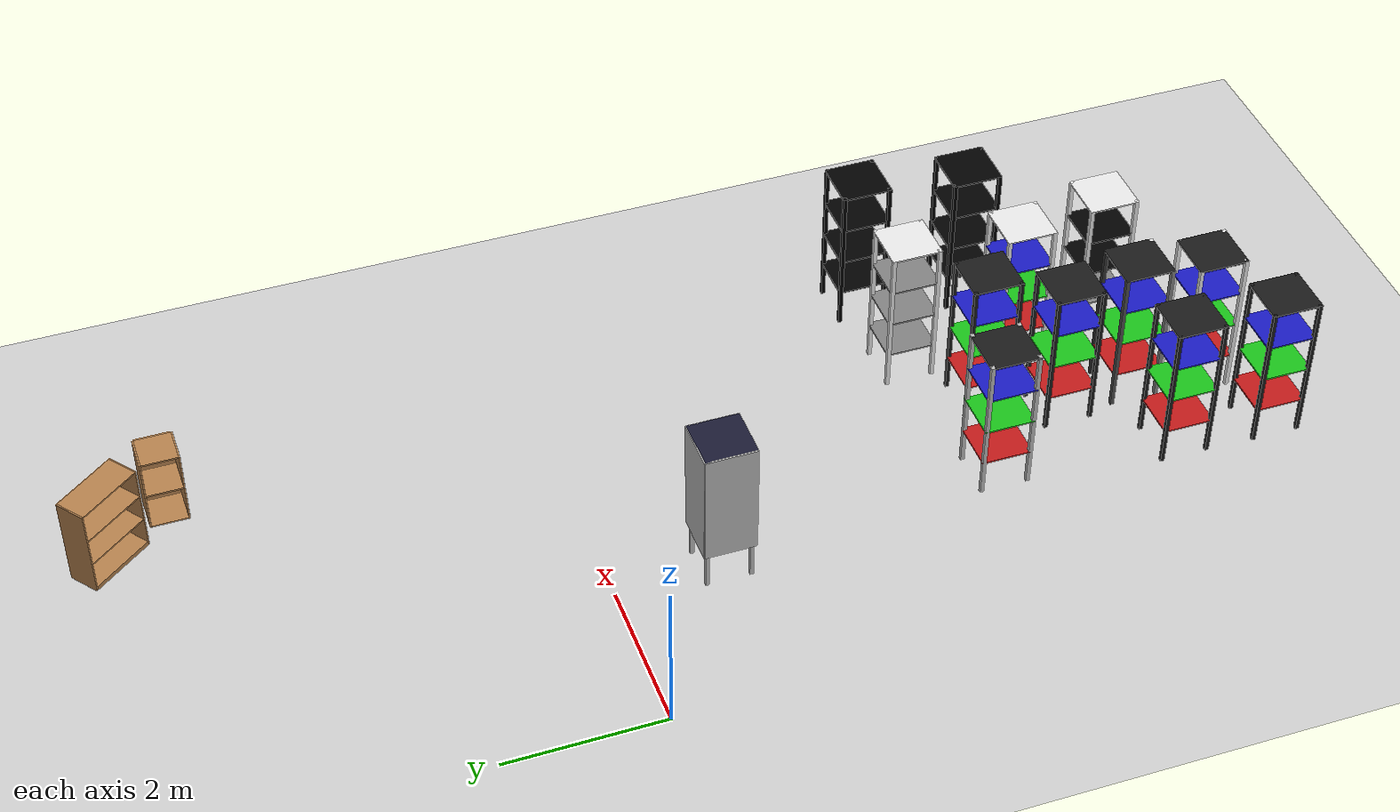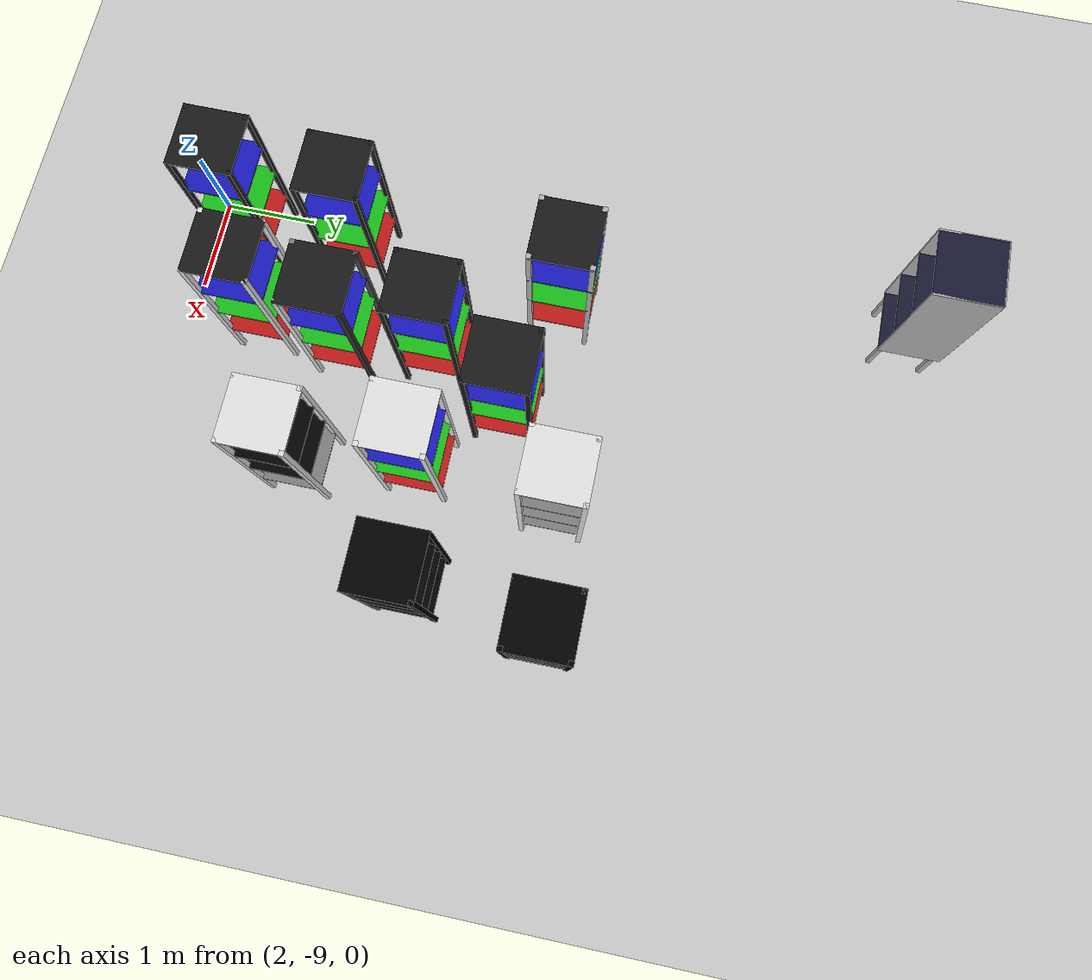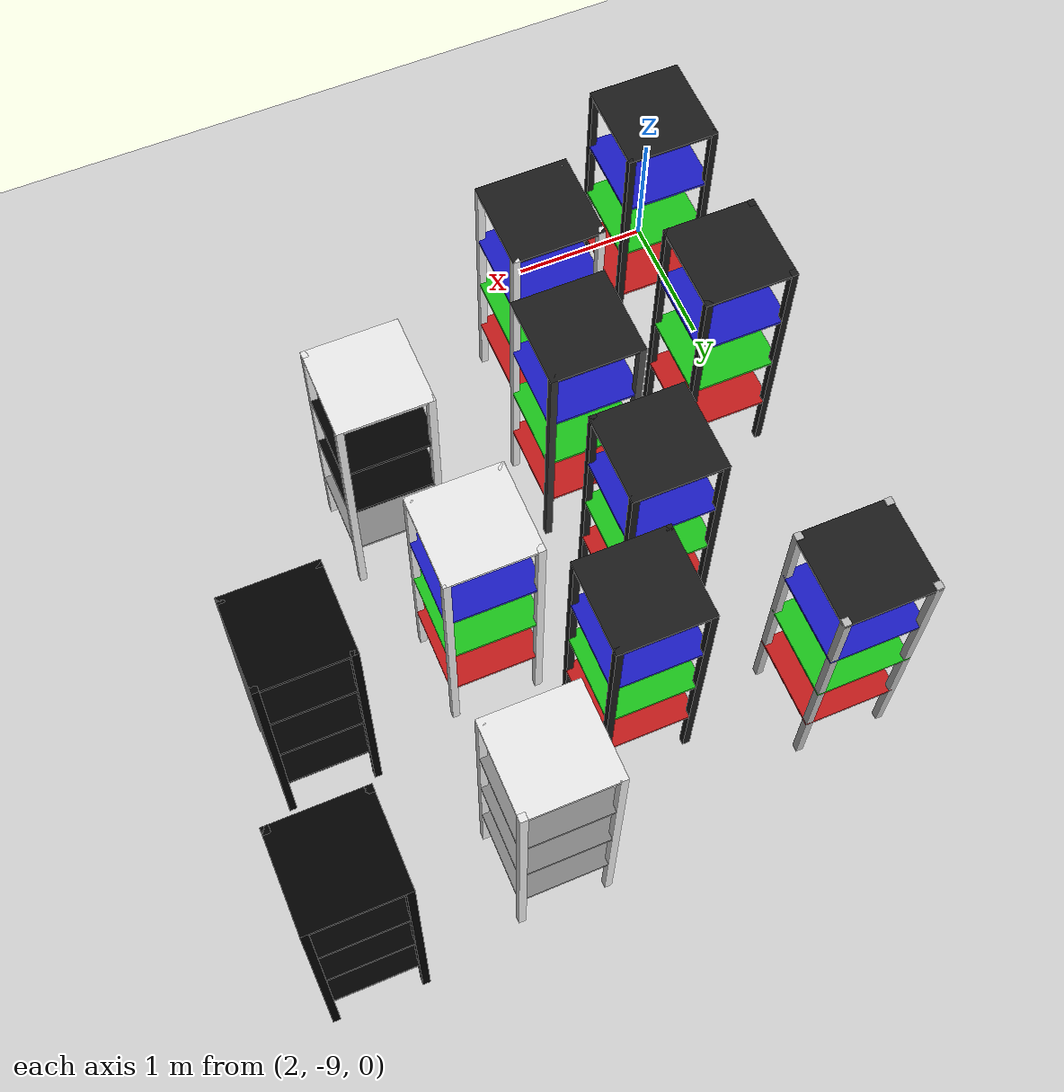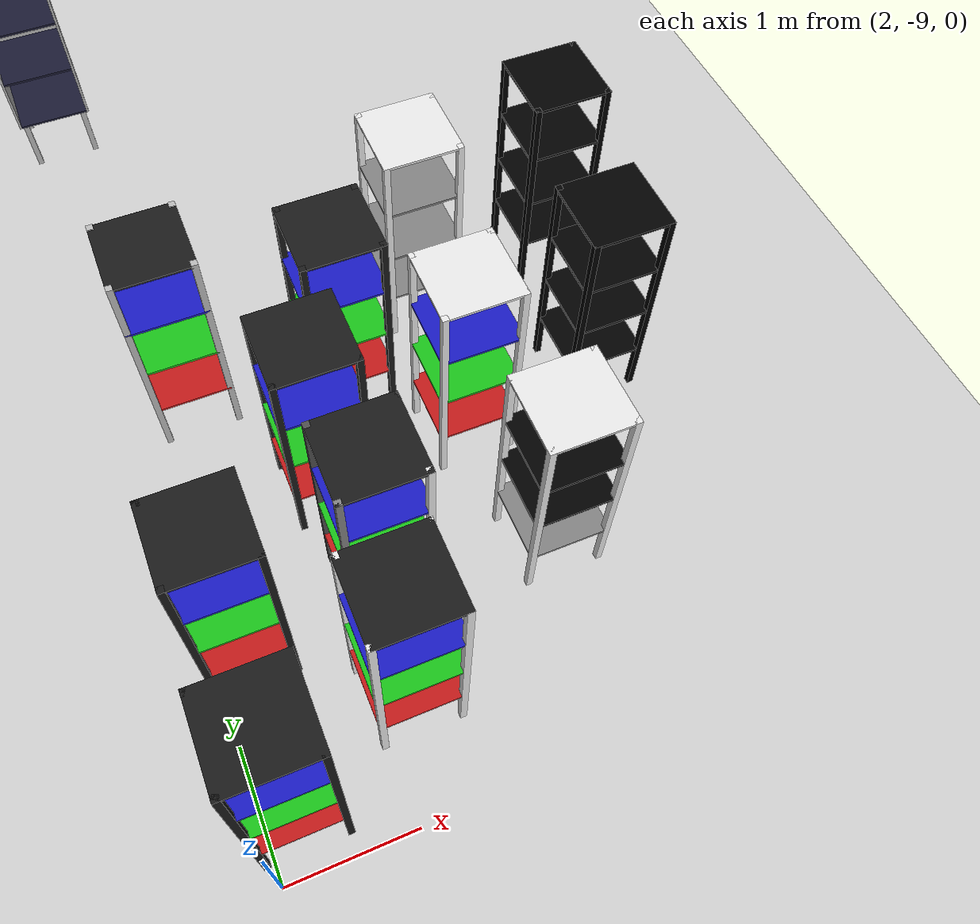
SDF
<sdf version="1.6">
 <world name="default">
  <model name="ground_plane">
   <static>1</static>
   <link name="link">
    <collision name="collision">
     <geometry><plane><normal>0 0 1</normal><size>50 50</size></plane></geometry>
     <surface><friction><ode><mu>100</mu><mu2>50</mu2></ode></friction></surface>
    </collision>
    <visual name="visual">
     <cast_shadows>0</cast_shadows>
     <geometry><plane><normal>0 0 1</normal><size>100 100</size></plane></geometry>
     <material>
      <script><uri>file://media/materials/scripts/gazebo.material</uri><name>Gazebo/Grey</name></script>
     </material>
    </visual>
    <velocity_decay><linear>0</linear><angular>0</angular></velocity_decay>
   </link>
  </model>
  <model name="bookshelf_2">
   <static>1</static>
   <link name="link">
    <inertial><mass>1</mass></inertial>
    <collision name="back">
     <pose>0 0.005 0.6 0 -0 0</pose>
     <geometry><box><size>0.9 0.01 1.2</size></box></geometry>
    </collision>
    <visual name="visual1">
     <pose>0 0.005 0.6 0 -0 0</pose>
     <geometry><box><size>0.9 0.01 1.2</size></box></geometry>
     <material>
      <script><uri>file://media/materials/scripts/gazebo.material</uri><name>Gazebo/Wood</name></script>
     </material>
    </visual>
    <collision name="left_side">
     <pose>0.45 -0.195 0.6 0 -0 0</pose>
     <geometry><box><size>0.02 0.4 1.2</size></box></geometry>
    </collision>
    <visual name="visual2">
     <pose>0.45 -0.195 0.6 0 -0 0</pose>
     <geometry><box><size>0.02 0.4 1.2</size></box></geometry>
     <material>
      <script><uri>file://media/materials/scripts/gazebo.material</uri><name>Gazebo/Wood</name></script>
     </material>
    </visual>
    <collision name="right_side">
     <pose>-0.45 -0.195 0.6 0 -0 0</pose>
     <geometry><box><size>0.02 0.4 1.2</size></box></geometry>
    </collision>
    <visual name="visual3">
     <pose>-0.45 -0.195 0.6 0 -0 0</pose>
     <geometry><box><size>0.02 0.4 1.2</size></box></geometry>
     <material>
      <script><uri>file://media/materials/scripts/gazebo.material</uri><name>Gazebo/Wood</name></script>
     </material>
    </visual>
    <collision name="bottom">
     <pose>0 -0.195 0.03 0 -0 0</pose>
     <geometry><box><size>0.88 0.4 0.06</size></box></geometry>
    </collision>
    <visual name="visual4">
     <pose>0 -0.195 0.03 0 -0 0</pose>
     <geometry><box><size>0.88 0.4 0.06</size></box></geometry>
     <material>
      <script><uri>file://media/materials/scripts/gazebo.material</uri><name>Gazebo/Wood</name></script>
     </material>
    </visual>
    <collision name="top">
     <pose>0 -0.195 1.19 0 -0 0</pose>
     <geometry><box><size>0.88 0.4 0.02</size></box></geometry>
    </collision>
    <visual name="visual5">
     <pose>0 -0.195 1.19 0 -0 0</pose>
     <geometry><box><size>0.88 0.4 0.02</size></box></geometry>
     <material>
      <script><uri>file://media/materials/scripts/gazebo.material</uri><name>Gazebo/Wood</name></script>
     </material>
    </visual>
    <collision name="low_shelf">
     <pose>0 -0.195 0.43 0 -0 0</pose>
     <geometry><box><size>0.88 0.4 0.02</size></box></geometry>
    </collision>
    <visual name="visual6">
     <pose>0 -0.195 0.43 0 -0 0</pose>
     <geometry><box><size>0.88 0.4 0.02</size></box></geometry>
     <material>
      <script><uri>file://media/materials/scripts/gazebo.material</uri><name>Gazebo/Wood</name></script>
     </material>
    </visual>
    <collision name="high_shelf">
     <pose>0 -0.195 0.8 0 -0 0</pose>
     <geometry><box><size>0.88 0.4 0.02</size></box></geometry>
    </collision>
    <visual name="visual7">
     <pose>0 -0.195 0.8 0 -0 0</pose>
     <geometry><box><size>0.88 0.4 0.02</size></box></geometry>
     <material>
      <script><uri>file://media/materials/scripts/gazebo.material</uri><name>Gazebo/Wood</name></script>
     </material>
    </visual>
    <velocity_decay><linear>0</linear><angular>0</angular></velocity_decay>
   </link>
   <pose>4.65383 5.55808 0 0 0 -0.917052</pose>
  </model>
  <model name="cabinet_1">
   <static>1</static>
   <link name="cabinet_bottom_plate">
    <inertial>
     <pose>0 0 -1 0 -0 0</pose>
     <inertia><ixx>2.05</ixx><ixy>0</ixy><ixz>0</ixz><iyy>2.05</iyy><iyz>0</iyz><izz>2.05</izz></inertia>
     <mass>25</mass>
    </inertial>
    <collision name="cabinet_bottom_plate_geom">
     <pose>0 0 0.01 0 -0 0</pose>
     <geometry><box><size>0.45 0.45 0.02</size></box></geometry>
    </collision>
    <visual name="cabinet_bottom_plate_geom_visual">
     <pose>0 0 0.01 0 -0 0</pose>
     <geometry><box><size>0.45 0.45 0.02</size></box></geometry>
     <material>
      <script><uri>file://media/materials/scripts/gazebo.material</uri><name>Gazebo/Wood</name></script>
     </material>
    </visual>
    <collision name="cabinet_bottom_plate_geom_cabinet_back_plate">
     <pose>0.235 0 0.51 0 -0 0</pose>
     <geometry><box><size>0.02 0.45 1.02</size></box></geometry>
    </collision>
    <visual name="cabinet_bottom_plate_geom_cabinet_back_plate_visual">
     <pose>0.235 0 0.51 0 -0 0</pose>
     <geometry><box><size>0.02 0.45 1.02</size></box></geometry>
     <material>
      <script><uri>file://media/materials/scripts/gazebo.material</uri><name>Gazebo/Wood</name></script>
     </material>
    </visual>
    <collision name="cabinet_bottom_plate_geom_cabinet_left_plate">
     <pose>0 0.235 0.51 0 -0 0</pose>
     <geometry><box><size>0.45 0.02 1.02</size></box></geometry>
    </collision>
    <visual name="cabinet_bottom_plate_geom_cabinet_left_plate_visual">
     <pose>0 0.235 0.51 0 -0 0</pose>
     <geometry><box><size>0.45 0.02 1.02</size></box></geometry>
     <material>
      <script><uri>file://media/materials/scripts/gazebo.material</uri><name>Gazebo/Wood</name></script>
     </material>
    </visual>
    <collision name="cabinet_bottom_plate_geom_cabinet_middle_plate">
     <pose>0 0 0.51 0 -0 0</pose>
     <geometry><box><size>0.45 0.45 0.02</size></box></geometry>
    </collision>
    <visual name="cabinet_bottom_plate_geom_cabinet_middle_plate_visual">
     <pose>0 0 0.51 0 -0 0</pose>
     <geometry><box><size>0.45 0.45 0.02</size></box></geometry>
     <material>
      <script><uri>file://media/materials/scripts/gazebo.material</uri><name>Gazebo/Wood</name></script>
     </material>
    </visual>
    <collision name="cabinet_bottom_plate_geom_cabinet_right_plate">
     <pose>0 -0.235 0.51 0 -0 0</pose>
     <geometry><box><size>0.45 0.02 1.02</size></box></geometry>
    </collision>
    <visual name="cabinet_bottom_plate_geom_cabinet_right_plate_visual">
     <pose>0 -0.235 0.51 0 -0 0</pose>
     <geometry><box><size>0.45 0.02 1.02</size></box></geometry>
     <material>
      <script><uri>file://media/materials/scripts/gazebo.material</uri><name>Gazebo/Wood</name></script>
     </material>
    </visual>
    <collision name="cabinet_bottom_plate_geom_cabinet_top_plate">
     <pose>0 0 1.01 0 -0 0</pose>
     <geometry><box><size>0.45 0.45 0.02</size></box></geometry>
    </collision>
    <visual name="cabinet_bottom_plate_geom_cabinet_top_plate_visual">
     <pose>0 0 1.01 0 -0 0</pose>
     <geometry><box><size>0.45 0.45 0.02</size></box></geometry>
     <material>
      <script><uri>file://media/materials/scripts/gazebo.material</uri><name>Gazebo/Wood</name></script>
     </material>
    </visual>
    <velocity_decay><linear>0</linear><angular>0</angular></velocity_decay>
   </link>
   <pose>5.10985 4.64944 0 0 -0 0</pose>
  </model>
  <model name="warehouse_shelf_2">
   <static>1</static>
   <pose>2.10777 -1.33908 0 0 -0 0</pose>
   <link name="main_block">
    <pose>0 0 1.255 0 -0 0</pose>
    <collision name="collision"><geometry><box><size>0.65 0.65 1.51</size></box></geometry></collision>
   </link>
   <link name="leg_1">
    <pose>0.275 0.275 0.25 0 -0 0</pose>
    <collision name="collision"><geometry><box><size>0.05 0.05 0.5</size></box></geometry></collision>
    <visual name="visual"><geometry><box><size>0.05 0.05 0.5</size></box></geometry></visual>
   </link>
   <link name="leg_2">
    <pose>-0.275 0.275 0.25 0 -0 0</pose>
    <collision name="collision"><geometry><box><size>0.05 0.05 0.5</size></box></geometry></collision>
    <visual name="visual"><geometry><box><size>0.05 0.05 0.5</size></box></geometry></visual>
   </link>
   <link name="leg_3">
    <pose>-0.275 -0.275 0.25 0 -0 0</pose>
    <collision name="collision"><geometry><box><size>0.05 0.05 0.5</size></box></geometry></collision>
    <visual name="visual"><geometry><box><size>0.05 0.05 0.5</size></box></geometry></visual>
   </link>
   <link name="leg_4">
    <pose>0.275 -0.275 0.25 0 -0 0</pose>
    <collision name="collision"><geometry><box><size>0.05 0.05 0.5</size></box></geometry></collision>
    <visual name="visual"><geometry><box><size>0.05 0.05 0.5</size></box></geometry></visual>
   </link>
   <link name="shelf_0">
    <pose>0 0 0.5 0 -0 0</pose>
    <visual name="visual">
     <geometry><box><size>0.648 0.648 0.02</size></box></geometry>
     <material>
      <ambient>0.1 0.1 0.1 1</ambient>
      <diffuse>0.1 0.1 0.2 1</diffuse>
      <specular>0 0 0 0</specular>
      <emissive>0 0 0 1</emissive>
     </material>
    </visual>
   </link>
   <link name="shelf_1">
    <pose>0 0 1 0 -0 0</pose>
    <visual name="visual">
     <geometry><box><size>0.648 0.648 0.02</size></box></geometry>
     <material>
      <ambient>0.9 0.1 0.1 1</ambient>
      <diffuse>0.1 0.1 0.2 1</diffuse>
      <specular>0 0 0 0</specular>
      <emissive>0 0 0 1</emissive>
     </material>
    </visual>
   </link>
   <link name="shelf_2">
    <pose>0 0 1.5 0 -0 0</pose>
    <visual name="visual">
     <geometry><box><size>0.648 0.648 0.02</size></box></geometry>
     <material>
      <ambient>0.9 0.9 0.1 1</ambient>
      <diffuse>0.1 0.1 0.2 1</diffuse>
      <specular>0 0 0 0</specular>
      <emissive>0 0 0 1</emissive>
     </material>
    </visual>
   </link>
   <link name="shelf_top">
    <pose>0 0 2 0 -0 0</pose>
    <visual name="visual">
     <geometry><box><size>0.648 0.648 0.02</size></box></geometry>
     <material>
      <ambient>0.1 0.1 0.1 1</ambient>
      <diffuse>0.1 0.1 0.2 1</diffuse>
      <specular>0 0 0 0</specular>
      <emissive>0 0 0 1</emissive>
     </material>
    </visual>
   </link>
   <link name="side_left">
    <pose>0.324 0 1.25 0 -0 0</pose>
    <visual name="visual"><geometry><box><size>0.02 0.65 1.52</size></box></geometry></visual>
   </link>
   <link name="side_right">
    <pose>-0.324 0 1.25 0 -0 0</pose>
    <visual name="visual"><geometry><box><size>0.02 0.65 1.52</size></box></geometry></visual>
   </link>
   <link name="side_back">
    <pose>0 0.324 1.25 0 -0 0</pose>
    <visual name="visual"><geometry><box><size>0.65 0.02 1.52</size></box></geometry></visual>
   </link>
  </model>
  <model name="warehouse_shelf_25">
   <static>1</static>
   <pose>2.50013 -5.00606 0 0 -0 0</pose>
   <link name="main_block">
    <pose>0 0 1.25 0 -0 0</pose>
    <collision name="collision"><geometry><box><size>0.65 0.65 1.5</size></box></geometry></collision>
   </link>
   <link name="leg_1">
    <pose>0.3 0.3 1 0 -0 0</pose>
    <collision name="collision"><geometry><box><size>0.05 0.05 2</size></box></geometry></collision>
    <visual name="visual"><geometry><box><size>0.05 0.05 2</size></box></geometry></visual>
   </link>
   <link name="leg_2">
    <pose>-0.3 0.3 1 0 -0 0</pose>
    <collision name="collision"><geometry><box><size>0.05 0.05 2</size></box></geometry></collision>
    <visual name="visual"><geometry><box><size>0.05 0.05 2</size></box></geometry></visual>
   </link>
   <link name="leg_3">
    <pose>-0.3 -0.3 1 0 -0 0</pose>
    <collision name="collision"><geometry><box><size>0.05 0.05 2</size></box></geometry></collision>
    <visual name="visual"><geometry><box><size>0.05 0.05 2</size></box></geometry></visual>
   </link>
   <link name="leg_4">
    <pose>0.3 -0.3 1 0 -0 0</pose>
    <collision name="collision"><geometry><box><size>0.05 0.05 2</size></box></geometry></collision>
    <visual name="visual"><geometry><box><size>0.05 0.05 2</size></box></geometry></visual>
   </link>
   <link name="shelf_0">
    <pose>0 0 0.48 0 -0 0</pose>
    <visual name="visual">
     <geometry><box><size>0.65 0.65 0.02</size></box></geometry>
     <material><ambient>0.75 0.1 0.1 1</ambient><diffuse>0.75 0.1 0.1 1</diffuse></material>
    </visual>
   </link>
   <link name="shelf_1">
    <pose>0 0 0.98 0 -0 0</pose>
    <visual name="visual">
     <geometry><box><size>0.65 0.65 0.02</size></box></geometry>
     <material><ambient>0.1 0.75 0.1 1</ambient><diffuse>0.1 0.75 0.1 1</diffuse></material>
    </visual>
   </link>
   <link name="shelf_2">
    <pose>0 0 1.48 0 -0 0</pose>
    <visual name="visual">
     <geometry><box><size>0.65 0.65 0.02</size></box></geometry>
     <material><ambient>0.1 0.1 0.75 1</ambient><diffuse>0.1 0.1 0.75 1</diffuse></material>
    </visual>
   </link>
   <link name="shelf_top">
    <pose>0 0 1.98 0 -0 0</pose>
    <visual name="visual">
     <geometry><box><size>0.65 0.65 0.02</size></box></geometry>
     <material><ambient>0.1 0.1 0.1 1</ambient><diffuse>0.1 0.1 0.1 1</diffuse></material>
    </visual>
   </link>
  </model>
  <model name="warehouse_shelf_31">
   <static>1</static>
   <pose>2.24316 -8.52658 0 0 -0 0</pose>
   <link name="main_block">
    <pose>0 0 1.25 0 -0 0</pose>
    <collision name="collision"><geometry><box><size>0.65 0.65 1.5</size></box></geometry></collision>
   </link>
   <link name="leg_1">
    <pose>0.3 0.3 1 0 -0 0</pose>
    <collision name="collision"><geometry><box><size>0.05 0.05 2</size></box></geometry></collision>
    <visual name="visual">
     <geometry><box><size>0.05 0.05 2</size></box></geometry>
     <material><ambient>0.1 0.1 0.1 1</ambient><diffuse>0.1 0.1 0.1 1</diffuse></material>
    </visual>
   </link>
   <link name="leg_2">
    <pose>-0.3 0.3 1 0 -0 0</pose>
    <collision name="collision"><geometry><box><size>0.05 0.05 2</size></box></geometry></collision>
    <visual name="visual">
     <geometry><box><size>0.05 0.05 2</size></box></geometry>
     <material><ambient>0.1 0.1 0.1 1</ambient><diffuse>0.1 0.1 0.1 1</diffuse></material>
    </visual>
   </link>
   <link name="leg_3">
    <pose>-0.3 -0.3 1 0 -0 0</pose>
    <collision name="collision"><geometry><box><size>0.05 0.05 2</size></box></geometry></collision>
    <visual name="visual">
     <geometry><box><size>0.05 0.05 2</size></box></geometry>
     <material><ambient>0.1 0.1 0.1 1</ambient><diffuse>0.1 0.1 0.1 1</diffuse></material>
    </visual>
   </link>
   <link name="leg_4">
    <pose>0.3 -0.3 1 0 -0 0</pose>
    <collision name="collision"><geometry><box><size>0.05 0.05 2</size></box></geometry></collision>
    <visual name="visual">
     <geometry><box><size>0.05 0.05 2</size></box></geometry>
     <material><ambient>0.1 0.1 0.1 1</ambient><diffuse>0.1 0.1 0.1 1</diffuse></material>
    </visual>
   </link>
   <link name="shelf_0">
    <pose>0 0 0.49 0 -0 0</pose>
    <visual name="visual">
     <geometry><box><size>0.649 0.649 0.02</size></box></geometry>
     <material><ambient>0.75 0.1 0.1 1</ambient><diffuse>0.75 0.1 0.1 1</diffuse></material>
    </visual>
   </link>
   <link name="shelf_1">
    <pose>0 0 0.99 0 -0 0</pose>
    <visual name="visual">
     <geometry><box><size>0.649 0.649 0.02</size></box></geometry>
     <material><ambient>0.1 0.75 0.1 1</ambient><diffuse>0.1 0.75 0.1 1</diffuse></material>
    </visual>
   </link>
   <link name="shelf_2">
    <pose>0 0 1.49 0 -0 0</pose>
    <visual name="visual">
     <geometry><box><size>0.649 0.649 0.02</size></box></geometry>
     <material><ambient>0.1 0.1 0.75 1</ambient><diffuse>0.1 0.1 0.75 1</diffuse></material>
    </visual>
   </link>
   <link name="shelf_top">
    <pose>0 0 1.99 0 -0 0</pose>
    <visual name="visual">
     <geometry><box><size>0.649 0.649 0.02</size></box></geometry>
     <material><ambient>0.1 0.1 0.1 1</ambient><diffuse>0.1 0.1 0.1 1</diffuse></material>
    </visual>
   </link>
  </model>
  <model name="warehouse_shelf_33">
   <static>1</static>
   <pose>3.77853 -5.34366 0 0 -0 0</pose>
   <link name="main_block">
    <pose>0 0 1.25 0 -0 0</pose>
    <collision name="collision"><geometry><box><size>0.65 0.65 1.5</size></box></geometry></collision>
   </link>
   <link name="leg_1">
    <pose>0.3 0.3 1 0 -0 0</pose>
    <collision name="collision"><geometry><box><size>0.05 0.05 2</size></box></geometry></collision>
    <visual name="visual">
     <geometry><box><size>0.05 0.05 2</size></box></geometry>
     <material><ambient>0.1 0.1 0.1 1</ambient><diffuse>0.1 0.1 0.1 1</diffuse></material>
    </visual>
   </link>
   <link name="leg_2">
    <pose>-0.3 0.3 1 0 -0 0</pose>
    <collision name="collision"><geometry><box><size>0.05 0.05 2</size></box></geometry></collision>
    <visual name="visual">
     <geometry><box><size>0.05 0.05 2</size></box></geometry>
     <material><ambient>0.1 0.1 0.1 1</ambient><diffuse>0.1 0.1 0.1 1</diffuse></material>
    </visual>
   </link>
   <link name="leg_3">
    <pose>-0.3 -0.3 1 0 -0 0</pose>
    <collision name="collision"><geometry><box><size>0.05 0.05 2</size></box></geometry></collision>
    <visual name="visual">
     <geometry><box><size>0.05 0.05 2</size></box></geometry>
     <material><ambient>0.1 0.1 0.1 1</ambient><diffuse>0.1 0.1 0.1 1</diffuse></material>
    </visual>
   </link>
   <link name="leg_4">
    <pose>0.3 -0.3 1 0 -0 0</pose>
    <collision name="collision"><geometry><box><size>0.05 0.05 2</size></box></geometry></collision>
    <visual name="visual">
     <geometry><box><size>0.05 0.05 2</size></box></geometry>
     <material><ambient>0.1 0.1 0.1 1</ambient><diffuse>0.1 0.1 0.1 1</diffuse></material>
    </visual>
   </link>
   <link name="shelf_0">
    <pose>0 0 0.49 0 -0 0</pose>
    <visual name="visual">
     <geometry><box><size>0.649 0.649 0.02</size></box></geometry>
     <material><ambient>0.75 0.1 0.1 1</ambient><diffuse>0.75 0.1 0.1 1</diffuse></material>
    </visual>
   </link>
   <link name="shelf_1">
    <pose>0 0 0.99 0 -0 0</pose>
    <visual name="visual">
     <geometry><box><size>0.649 0.649 0.02</size></box></geometry>
     <material><ambient>0.1 0.75 0.1 1</ambient><diffuse>0.1 0.75 0.1 1</diffuse></material>
    </visual>
   </link>
   <link name="shelf_2">
    <pose>0 0 1.49 0 -0 0</pose>
    <visual name="visual">
     <geometry><box><size>0.649 0.649 0.02</size></box></geometry>
     <material><ambient>0.1 0.1 0.75 1</ambient><diffuse>0.1 0.1 0.75 1</diffuse></material>
    </visual>
   </link>
   <link name="shelf_top">
    <pose>0 0 1.99 0 -0 0</pose>
    <visual name="visual">
     <geometry><box><size>0.649 0.649 0.02</size></box></geometry>
     <material><ambient>0.1 0.1 0.1 1</ambient><diffuse>0.1 0.1 0.1 1</diffuse></material>
    </visual>
   </link>
  </model>
  <model name="warehouse_shelf_34">
   <static>1</static>
   <pose>2.27094 -7.29985 0 0 -0 0</pose>
   <link name="main_block">
    <pose>0 0 1.25 0 -0 0</pose>
    <collision name="collision"><geometry><box><size>0.65 0.65 1.5</size></box></geometry></collision>
   </link>
   <link name="leg_1">
    <pose>0.3 0.3 1 0 -0 0</pose>
    <collision name="collision"><geometry><box><size>0.05 0.05 2</size></box></geometry></collision>
    <visual name="visual">
     <geometry><box><size>0.05 0.05 2</size></box></geometry>
     <material><ambient>0.1 0.1 0.1 1</ambient><diffuse>0.1 0.1 0.1 1</diffuse></material>
    </visual>
   </link>
   <link name="leg_2">
    <pose>-0.3 0.3 1 0 -0 0</pose>
    <collision name="collision"><geometry><box><size>0.05 0.05 2</size></box></geometry></collision>
    <visual name="visual">
     <geometry><box><size>0.05 0.05 2</size></box></geometry>
     <material><ambient>0.1 0.1 0.1 1</ambient><diffuse>0.1 0.1 0.1 1</diffuse></material>
    </visual>
   </link>
   <link name="leg_3">
    <pose>-0.3 -0.3 1 0 -0 0</pose>
    <collision name="collision"><geometry><box><size>0.05 0.05 2</size></box></geometry></collision>
    <visual name="visual">
     <geometry><box><size>0.05 0.05 2</size></box></geometry>
     <material><ambient>0.1 0.1 0.1 1</ambient><diffuse>0.1 0.1 0.1 1</diffuse></material>
    </visual>
   </link>
   <link name="leg_4">
    <pose>0.3 -0.3 1 0 -0 0</pose>
    <collision name="collision"><geometry><box><size>0.05 0.05 2</size></box></geometry></collision>
    <visual name="visual">
     <geometry><box><size>0.05 0.05 2</size></box></geometry>
     <material><ambient>0.1 0.1 0.1 1</ambient><diffuse>0.1 0.1 0.1 1</diffuse></material>
    </visual>
   </link>
   <link name="shelf_0">
    <pose>0 0 0.49 0 -0 0</pose>
    <visual name="visual">
     <geometry><box><size>0.649 0.649 0.02</size></box></geometry>
     <material><ambient>0.75 0.1 0.1 1</ambient><diffuse>0.75 0.1 0.1 1</diffuse></material>
    </visual>
   </link>
   <link name="shelf_1">
    <pose>0 0 0.99 0 -0 0</pose>
    <visual name="visual">
     <geometry><box><size>0.649 0.649 0.02</size></box></geometry>
     <material><ambient>0.1 0.75 0.1 1</ambient><diffuse>0.1 0.75 0.1 1</diffuse></material>
    </visual>
   </link>
   <link name="shelf_2">
    <pose>0 0 1.49 0 -0 0</pose>
    <visual name="visual">
     <geometry><box><size>0.649 0.649 0.02</size></box></geometry>
     <material><ambient>0.1 0.1 0.75 1</ambient><diffuse>0.1 0.1 0.75 1</diffuse></material>
    </visual>
   </link>
   <link name="shelf_top">
    <pose>0 0 1.99 0 -0 0</pose>
    <visual name="visual">
     <geometry><box><size>0.649 0.649 0.02</size></box></geometry>
     <material><ambient>0.1 0.1 0.1 1</ambient><diffuse>0.1 0.1 0.1 1</diffuse></material>
    </visual>
   </link>
  </model>
  <model name="warehouse_shelf_35">
   <static>1</static>
   <pose>3.28351 -6.20415 0 0 -0 0</pose>
   <link name="main_block">
    <pose>0 0 1.25 0 -0 0</pose>
    <collision name="collision"><geometry><box><size>0.65 0.65 1.5</size></box></geometry></collision>
   </link>
   <link name="leg_1">
    <pose>0.3 0.3 1 0 -0 0</pose>
    <collision name="collision"><geometry><box><size>0.05 0.05 2</size></box></geometry></collision>
    <visual name="visual">
     <geometry><box><size>0.05 0.05 2</size></box></geometry>
     <material><ambient>0.1 0.1 0.1 1</ambient><diffuse>0.1 0.1 0.1 1</diffuse></material>
    </visual>
   </link>
   <link name="leg_2">
    <pose>-0.3 0.3 1 0 -0 0</pose>
    <collision name="collision"><geometry><box><size>0.05 0.05 2</size></box></geometry></collision>
    <visual name="visual">
     <geometry><box><size>0.05 0.05 2</size></box></geometry>
     <material><ambient>0.1 0.1 0.1 1</ambient><diffuse>0.1 0.1 0.1 1</diffuse></material>
    </visual>
   </link>
   <link name="leg_3">
    <pose>-0.3 -0.3 1 0 -0 0</pose>
    <collision name="collision"><geometry><box><size>0.05 0.05 2</size></box></geometry></collision>
    <visual name="visual">
     <geometry><box><size>0.05 0.05 2</size></box></geometry>
     <material><ambient>0.1 0.1 0.1 1</ambient><diffuse>0.1 0.1 0.1 1</diffuse></material>
    </visual>
   </link>
   <link name="leg_4">
    <pose>0.3 -0.3 1 0 -0 0</pose>
    <collision name="collision"><geometry><box><size>0.05 0.05 2</size></box></geometry></collision>
    <visual name="visual">
     <geometry><box><size>0.05 0.05 2</size></box></geometry>
     <material><ambient>0.1 0.1 0.1 1</ambient><diffuse>0.1 0.1 0.1 1</diffuse></material>
    </visual>
   </link>
   <link name="shelf_0">
    <pose>0 0 0.49 0 -0 0</pose>
    <visual name="visual">
     <geometry><box><size>0.649 0.649 0.02</size></box></geometry>
     <material><ambient>0.75 0.1 0.1 1</ambient><diffuse>0.75 0.1 0.1 1</diffuse></material>
    </visual>
   </link>
   <link name="shelf_1">
    <pose>0 0 0.99 0 -0 0</pose>
    <visual name="visual">
     <geometry><box><size>0.649 0.649 0.02</size></box></geometry>
     <material><ambient>0.1 0.75 0.1 1</ambient><diffuse>0.1 0.75 0.1 1</diffuse></material>
    </visual>
   </link>
   <link name="shelf_2">
    <pose>0 0 1.49 0 -0 0</pose>
    <visual name="visual">
     <geometry><box><size>0.649 0.649 0.02</size></box></geometry>
     <material><ambient>0.1 0.1 0.75 1</ambient><diffuse>0.1 0.1 0.75 1</diffuse></material>
    </visual>
   </link>
   <link name="shelf_top">
    <pose>0 0 1.99 0 -0 0</pose>
    <visual name="visual">
     <geometry><box><size>0.649 0.649 0.02</size></box></geometry>
     <material><ambient>0.1 0.1 0.1 1</ambient><diffuse>0.1 0.1 0.1 1</diffuse></material>
    </visual>
   </link>
  </model>
  <model name="warehouse_shelf_36">
   <static>1</static>
   <pose>3.39681 -7.15863 0 0 -0 0</pose>
   <link name="main_block">
    <pose>0 0 1.25 0 -0 0</pose>
    <collision name="collision"><geometry><box><size>0.65 0.65 1.5</size></box></geometry></collision>
   </link>
   <link name="leg_1">
    <pose>0.3 0.3 1 0 -0 0</pose>
    <collision name="collision"><geometry><box><size>0.05 0.05 2</size></box></geometry></collision>
    <visual name="visual">
     <geometry><box><size>0.05 0.05 2</size></box></geometry>
     <material><ambient>0.1 0.1 0.1 1</ambient><diffuse>0.2 0.2 0.2 1</diffuse></material>
    </visual>
   </link>
   <link name="leg_2">
    <pose>-0.3 0.3 1 0 -0 0</pose>
    <collision name="collision"><geometry><box><size>0.05 0.05 2</size></box></geometry></collision>
    <visual name="visual">
     <geometry><box><size>0.05 0.05 2</size></box></geometry>
     <material><ambient>0.1 0.1 0.1 1</ambient><diffuse>0.3 0.3 0.3 1</diffuse></material>
    </visual>
   </link>
   <link name="leg_3">
    <pose>-0.3 -0.3 1 0 -0 0</pose>
    <collision name="collision"><geometry><box><size>0.05 0.05 2</size></box></geometry></collision>
    <visual name="visual">
     <geometry><box><size>0.05 0.05 2</size></box></geometry>
     <material><ambient>0.1 0.1 0.1 1</ambient><diffuse>0.5 0.5 0.5 1</diffuse></material>
    </visual>
   </link>
   <link name="leg_4">
    <pose>0.3 -0.3 1 0 -0 0</pose>
    <collision name="collision"><geometry><box><size>0.05 0.05 2</size></box></geometry></collision>
    <visual name="visual">
     <geometry><box><size>0.05 0.05 2</size></box></geometry>
     <material><ambient>0.1 0.1 0.1 1</ambient><diffuse>0.9 0.9 0.9 1</diffuse></material>
    </visual>
   </link>
   <link name="shelf_0">
    <pose>0 0 0.49 0 -0 0</pose>
    <visual name="visual">
     <geometry><box><size>0.649 0.649 0.02</size></box></geometry>
     <material><ambient>0.75 0.1 0.1 1</ambient><diffuse>0.75 0.1 0.1 1</diffuse></material>
    </visual>
   </link>
   <link name="shelf_1">
    <pose>0 0 0.99 0 -0 0</pose>
    <visual name="visual">
     <geometry><box><size>0.649 0.649 0.02</size></box></geometry>
     <material><ambient>0.1 0.75 0.1 1</ambient><diffuse>0.1 0.75 0.1 1</diffuse></material>
    </visual>
   </link>
   <link name="shelf_2">
    <pose>0 0 1.49 0 -0 0</pose>
    <visual name="visual">
     <geometry><box><size>0.649 0.649 0.02</size></box></geometry>
     <material><ambient>0.1 0.1 0.75 1</ambient><diffuse>0.1 0.1 0.75 1</diffuse></material>
    </visual>
   </link>
   <link name="shelf_top">
    <pose>0 0 1.99 0 -0 0</pose>
    <visual name="visual">
     <geometry><box><size>0.649 0.649 0.02</size></box></geometry>
     <material><ambient>0.1 0.1 0.1 1</ambient><diffuse>0.1 0.1 0.1 1</diffuse></material>
    </visual>
   </link>
  </model>
  <model name="warehouse_shelf_37">
   <static>1</static>
   <pose>3.26335 -8.07664 0 0 -0 0</pose>
   <link name="main_block">
    <pose>0 0 1.25 0 -0 0</pose>
    <collision name="collision"><geometry><box><size>0.65 0.65 1.5</size></box></geometry></collision>
   </link>
   <link name="leg_1">
    <pose>0.3 0.3 1 0 -0 0</pose>
    <collision name="collision"><geometry><box><size>0.05 0.05 2</size></box></geometry></collision>
    <visual name="visual">
     <geometry><box><size>0.05 0.05 2</size></box></geometry>
     <material><ambient>0.1 0.1 0.1 1</ambient><diffuse>0.9 0.9 0.9 1</diffuse></material>
    </visual>
   </link>
   <link name="leg_2">
    <pose>-0.3 0.3 1 0 -0 0</pose>
    <collision name="collision"><geometry><box><size>0.05 0.05 2</size></box></geometry></collision>
    <visual name="visual">
     <geometry><box><size>0.05 0.05 2</size></box></geometry>
     <material><ambient>0.1 0.1 0.1 1</ambient><diffuse>0.9 0.9 0.9 1</diffuse></material>
    </visual>
   </link>
   <link name="leg_3">
    <pose>-0.3 -0.3 1 0 -0 0</pose>
    <collision name="collision"><geometry><box><size>0.05 0.05 2</size></box></geometry></collision>
    <visual name="visual">
     <geometry><box><size>0.05 0.05 2</size></box></geometry>
     <material><ambient>0.1 0.1 0.1 1</ambient><diffuse>0.9 0.9 0.9 1</diffuse></material>
    </visual>
   </link>
   <link name="leg_4">
    <pose>0.3 -0.3 1 0 -0 0</pose>
    <collision name="collision"><geometry><box><size>0.05 0.05 2</size></box></geometry></collision>
    <visual name="visual">
     <geometry><box><size>0.05 0.05 2</size></box></geometry>
     <material><ambient>0.1 0.1 0.1 1</ambient><diffuse>0.9 0.9 0.9 1</diffuse></material>
    </visual>
   </link>
   <link name="shelf_0">
    <pose>0 0 0.49 0 -0 0</pose>
    <visual name="visual">
     <geometry><box><size>0.649 0.649 0.02</size></box></geometry>
     <material><ambient>0.75 0.1 0.1 1</ambient><diffuse>0.75 0.1 0.1 1</diffuse></material>
    </visual>
   </link>
   <link name="shelf_1">
    <pose>0 0 0.99 0 -0 0</pose>
    <visual name="visual">
     <geometry><box><size>0.649 0.649 0.02</size></box></geometry>
     <material><ambient>0.1 0.75 0.1 1</ambient><diffuse>0.1 0.75 0.1 1</diffuse></material>
    </visual>
   </link>
   <link name="shelf_2">
    <pose>0 0 1.49 0 -0 0</pose>
    <visual name="visual">
     <geometry><box><size>0.649 0.649 0.02</size></box></geometry>
     <material><ambient>0.1 0.1 0.75 1</ambient><diffuse>0.1 0.1 0.75 1</diffuse></material>
    </visual>
   </link>
   <link name="shelf_top">
    <pose>0 0 1.99 0 -0 0</pose>
    <visual name="visual">
     <geometry><box><size>0.649 0.649 0.02</size></box></geometry>
     <material><ambient>0.1 0.1 0.1 1</ambient><diffuse>0.1 0.1 0.1 1</diffuse></material>
    </visual>
   </link>
  </model>
  <model name="warehouse_shelf_38">
   <static>1</static>
   <pose>4.52473 -6.11601 0 0 -0 0</pose>
   <link name="main_block">
    <pose>0 0 1.25 0 -0 0</pose>
    <collision name="collision"><geometry><box><size>0.65 0.65 1.5</size></box></geometry></collision>
   </link>
   <link name="leg_1">
    <pose>0.3 0.3 1 0 -0 0</pose>
    <collision name="collision"><geometry><box><size>0.05 0.05 2</size></box></geometry></collision>
    <visual name="visual">
     <geometry><box><size>0.05 0.05 2</size></box></geometry>
     <material><ambient>0.1 0.1 0.1 1</ambient><diffuse>0.9 0.9 0.9 1</diffuse></material>
    </visual>
   </link>
   <link name="leg_2">
    <pose>-0.3 0.3 1 0 -0 0</pose>
    <collision name="collision"><geometry><box><size>0.05 0.05 2</size></box></geometry></collision>
    <visual name="visual">
     <geometry><box><size>0.05 0.05 2</size></box></geometry>
     <material><ambient>0.1 0.1 0.1 1</ambient><diffuse>0.9 0.9 0.9 1</diffuse></material>
    </visual>
   </link>
   <link name="leg_3">
    <pose>-0.3 -0.3 1 0 -0 0</pose>
    <collision name="collision"><geometry><box><size>0.05 0.05 2</size></box></geometry></collision>
    <visual name="visual">
     <geometry><box><size>0.05 0.05 2</size></box></geometry>
     <material><ambient>0.1 0.1 0.1 1</ambient><diffuse>0.9 0.9 0.9 1</diffuse></material>
    </visual>
   </link>
   <link name="leg_4">
    <pose>0.3 -0.3 1 0 -0 0</pose>
    <collision name="collision"><geometry><box><size>0.05 0.05 2</size></box></geometry></collision>
    <visual name="visual">
     <geometry><box><size>0.05 0.05 2</size></box></geometry>
     <material><ambient>0.1 0.1 0.1 1</ambient><diffuse>0.9 0.9 0.9 1</diffuse></material>
    </visual>
   </link>
   <link name="shelf_0">
    <pose>0 0 0.49 0 -0 0</pose>
    <visual name="visual">
     <geometry><box><size>0.649 0.649 0.02</size></box></geometry>
     <material><ambient>0.75 0.1 0.1 1</ambient><diffuse>0.75 0.1 0.1 1</diffuse></material>
    </visual>
   </link>
   <link name="shelf_1">
    <pose>0 0 0.99 0 -0 0</pose>
    <visual name="visual">
     <geometry><box><size>0.649 0.649 0.02</size></box></geometry>
     <material><ambient>0.1 0.75 0.1 1</ambient><diffuse>0.1 0.75 0.1 1</diffuse></material>
    </visual>
   </link>
   <link name="shelf_2">
    <pose>0 0 1.49 0 -0 0</pose>
    <visual name="visual">
     <geometry><box><size>0.649 0.649 0.02</size></box></geometry>
     <material><ambient>0.1 0.1 0.75 1</ambient><diffuse>0.1 0.1 0.75 1</diffuse></material>
    </visual>
   </link>
   <link name="shelf_top">
    <pose>0 0 1.99 0 -0 0</pose>
    <visual name="visual">
     <geometry><box><size>0.649 0.649 0.02</size></box></geometry>
     <material><ambient>0.1 0.1 0.1 1</ambient><diffuse>0.9 0.9 0.9 1</diffuse></material>
    </visual>
   </link>
  </model>
  <model name="warehouse_shelf_39">
   <static>1</static>
   <pose>4.66047 -4.65165 0 0 -0 0</pose>
   <link name="main_block">
    <pose>0 0 1.25 0 -0 0</pose>
    <collision name="collision"><geometry><box><size>0.65 0.65 1.5</size></box></geometry></collision>
   </link>
   <link name="leg_1">
    <pose>0.3 0.3 1 0 -0 0</pose>
    <collision name="collision"><geometry><box><size>0.05 0.05 2</size></box></geometry></collision>
    <visual name="visual">
     <geometry><box><size>0.05 0.05 2</size></box></geometry>
     <material><ambient>0.1 0.1 0.1 1</ambient><diffuse>0.9 0.9 0.9 1</diffuse></material>
    </visual>
   </link>
   <link name="leg_2">
    <pose>-0.3 0.3 1 0 -0 0</pose>
    <collision name="collision"><geometry><box><size>0.05 0.05 2</size></box></geometry></collision>
    <visual name="visual">
     <geometry><box><size>0.05 0.05 2</size></box></geometry>
     <material><ambient>0.1 0.1 0.1 1</ambient><diffuse>0.9 0.9 0.9 1</diffuse></material>
    </visual>
   </link>
   <link name="leg_3">
    <pose>-0.3 -0.3 1 0 -0 0</pose>
    <collision name="collision"><geometry><box><size>0.05 0.05 2</size></box></geometry></collision>
    <visual name="visual">
     <geometry><box><size>0.05 0.05 2</size></box></geometry>
     <material><ambient>0.1 0.1 0.1 1</ambient><diffuse>0.9 0.9 0.9 1</diffuse></material>
    </visual>
   </link>
   <link name="leg_4">
    <pose>0.3 -0.3 1 0 -0 0</pose>
    <collision name="collision"><geometry><box><size>0.05 0.05 2</size></box></geometry></collision>
    <visual name="visual">
     <geometry><box><size>0.05 0.05 2</size></box></geometry>
     <material><ambient>0.1 0.1 0.1 1</ambient><diffuse>0.9 0.9 0.9 1</diffuse></material>
    </visual>
   </link>
   <link name="shelf_0">
    <pose>0 0 0.49 0 -0 0</pose>
    <visual name="visual">
     <geometry><box><size>0.649 0.649 0.02</size></box></geometry>
     <material><ambient>0.75 0.1 0.1 1</ambient><diffuse>0.5 0.5 0.5 1</diffuse></material>
    </visual>
   </link>
   <link name="shelf_1">
    <pose>0 0 0.99 0 -0 0</pose>
    <visual name="visual">
     <geometry><box><size>0.649 0.649 0.02</size></box></geometry>
     <material><ambient>0.1 0.75 0.1 1</ambient><diffuse>0.5 0.5 0.5 1</diffuse></material>
    </visual>
   </link>
   <link name="shelf_2">
    <pose>0 0 1.49 0 -0 0</pose>
    <visual name="visual">
     <geometry><box><size>0.649 0.649 0.02</size></box></geometry>
     <material><ambient>0.1 0.1 0.75 1</ambient><diffuse>0.5 0.5 0.5 1</diffuse></material>
    </visual>
   </link>
   <link name="shelf_top">
    <pose>0 0 1.99 0 -0 0</pose>
    <visual name="visual">
     <geometry><box><size>0.649 0.649 0.02</size></box></geometry>
     <material><ambient>0.1 0.1 0.1 1</ambient><diffuse>0.9 0.9 0.9 1</diffuse></material>
    </visual>
   </link>
  </model>
  <model name="warehouse_shelf_40">
   <static>1</static>
   <pose>4.74114 -7.31953 0 0 -0 0</pose>
   <link name="main_block">
    <pose>0 0 1.25 0 -0 0</pose>
    <collision name="collision"><geometry><box><size>0.65 0.65 1.5</size></box></geometry></collision>
   </link>
   <link name="leg_1">
    <pose>0.3 0.3 1 0 -0 0</pose>
    <collision name="collision"><geometry><box><size>0.05 0.05 2</size></box></geometry></collision>
    <visual name="visual">
     <geometry><box><size>0.05 0.05 2</size></box></geometry>
     <material><ambient>0.1 0.1 0.1 1</ambient><diffuse>0.9 0.9 0.9 1</diffuse></material>
    </visual>
   </link>
   <link name="leg_2">
    <pose>-0.3 0.3 1 0 -0 0</pose>
    <collision name="collision"><geometry><box><size>0.05 0.05 2</size></box></geometry></collision>
    <visual name="visual">
     <geometry><box><size>0.05 0.05 2</size></box></geometry>
     <material><ambient>0.1 0.1 0.1 1</ambient><diffuse>0.9 0.9 0.9 1</diffuse></material>
    </visual>
   </link>
   <link name="leg_3">
    <pose>-0.3 -0.3 1 0 -0 0</pose>
    <collision name="collision"><geometry><box><size>0.05 0.05 2</size></box></geometry></collision>
    <visual name="visual">
     <geometry><box><size>0.05 0.05 2</size></box></geometry>
     <material><ambient>0.1 0.1 0.1 1</ambient><diffuse>0.9 0.9 0.9 1</diffuse></material>
    </visual>
   </link>
   <link name="leg_4">
    <pose>0.3 -0.3 1 0 -0 0</pose>
    <collision name="collision"><geometry><box><size>0.05 0.05 2</size></box></geometry></collision>
    <visual name="visual">
     <geometry><box><size>0.05 0.05 2</size></box></geometry>
     <material><ambient>0.1 0.1 0.1 1</ambient><diffuse>0.9 0.9 0.9 1</diffuse></material>
    </visual>
   </link>
   <link name="shelf_0">
    <pose>0 0 0.49 0 -0 0</pose>
    <visual name="visual">
     <geometry><box><size>0.649 0.649 0.02</size></box></geometry>
     <material><ambient>0.75 0.1 0.1 1</ambient><diffuse>0.5 0.5 0.5 1</diffuse></material>
    </visual>
   </link>
   <link name="shelf_1">
    <pose>0 0 0.99 0 -0 0</pose>
    <visual name="visual">
     <geometry><box><size>0.649 0.649 0.02</size></box></geometry>
     <material><ambient>0.1 0.75 0.1 1</ambient><diffuse>0 0 0 1</diffuse></material>
    </visual>
   </link>
   <link name="shelf_2">
    <pose>0 0 1.49 0 -0 0</pose>
    <visual name="visual">
     <geometry><box><size>0.649 0.649 0.02</size></box></geometry>
     <material><ambient>0.1 0.1 0.75 1</ambient><diffuse>0 0 0 1</diffuse></material>
    </visual>
   </link>
   <link name="shelf_top">
    <pose>0 0 1.99 0 -0 0</pose>
    <visual name="visual">
     <geometry><box><size>0.649 0.649 0.02</size></box></geometry>
     <material><ambient>0.1 0.1 0.1 1</ambient><diffuse>0.9 0.9 0.9 1</diffuse></material>
    </visual>
   </link>
  </model>
  <model name="warehouse_shelf_41">
   <static>1</static>
   <pose>5.75981 -5.9226 0 0 -0 0</pose>
   <link name="main_block">
    <pose>0 0 1.25 0 -0 0</pose>
    <collision name="collision"><geometry><box><size>0.65 0.65 1.5</size></box></geometry></collision>
   </link>
   <link name="leg_1">
    <pose>0.3 0.3 1 0 -0 0</pose>
    <collision name="collision"><geometry><box><size>0.05 0.05 2</size></box></geometry></collision>
    <visual name="visual">
     <geometry><box><size>0.05 0.05 2</size></box></geometry>
     <material><ambient>0.1 0.1 0.1 1</ambient><diffuse>0 0 0 1</diffuse></material>
    </visual>
   </link>
   <link name="leg_2">
    <pose>-0.3 0.3 1 0 -0 0</pose>
    <collision name="collision"><geometry><box><size>0.05 0.05 2</size></box></geometry></collision>
    <visual name="visual">
     <geometry><box><size>0.05 0.05 2</size></box></geometry>
     <material><ambient>0.1 0.1 0.1 1</ambient><diffuse>0 0 0 1</diffuse></material>
    </visual>
   </link>
   <link name="leg_3">
    <pose>-0.3 -0.3 1 0 -0 0</pose>
    <collision name="collision"><geometry><box><size>0.05 0.05 2</size></box></geometry></collision>
    <visual name="visual">
     <geometry><box><size>0.05 0.05 2</size></box></geometry>
     <material><ambient>0.1 0.1 0.1 1</ambient><diffuse>0 0 0 1</diffuse></material>
    </visual>
   </link>
   <link name="leg_4">
    <pose>0.3 -0.3 1 0 -0 0</pose>
    <collision name="collision"><geometry><box><size>0.05 0.05 2</size></box></geometry></collision>
    <visual name="visual">
     <geometry><box><size>0.05 0.05 2</size></box></geometry>
     <material><ambient>0.1 0.1 0.1 1</ambient><diffuse>0 0 0 1</diffuse></material>
    </visual>
   </link>
   <link name="shelf_0">
    <pose>0 0 0.49 0 -0 0</pose>
    <visual name="visual">
     <geometry><box><size>0.649 0.649 0.02</size></box></geometry>
     <material><ambient>0.75 0.1 0.1 1</ambient><diffuse>0 0 0 1</diffuse></material>
    </visual>
   </link>
   <link name="shelf_1">
    <pose>0 0 0.99 0 -0 0</pose>
    <visual name="visual">
     <geometry><box><size>0.649 0.649 0.02</size></box></geometry>
     <material><ambient>0.1 0.75 0.1 1</ambient><diffuse>0 0 0 1</diffuse></material>
    </visual>
   </link>
   <link name="shelf_2">
    <pose>0 0 1.49 0 -0 0</pose>
    <visual name="visual">
     <geometry><box><size>0.649 0.649 0.02</size></box></geometry>
     <material><ambient>0.1 0.1 0.75 1</ambient><diffuse>0 0 0 1</diffuse></material>
    </visual>
   </link>
   <link name="shelf_top">
    <pose>0 0 1.99 0 -0 0</pose>
    <visual name="visual">
     <geometry><box><size>0.649 0.649 0.02</size></box></geometry>
     <material><ambient>0.1 0.1 0.1 1</ambient><diffuse>0 0 0 1</diffuse></material>
    </visual>
   </link>
  </model>
  <model name="warehouse_shelf_42">
   <static>1</static>
   <pose>5.96706 -4.52321 0 0 -0 0</pose>
   <link name="main_block">
    <pose>0 0 1.25 0 -0 0</pose>
    <collision name="collision"><geometry><box><size>0.65 0.65 1.5</size></box></geometry></collision>
   </link>
   <link name="leg_1">
    <pose>0.3 0.3 1 0 -0 0</pose>
    <collision name="collision"><geometry><box><size>0.05 0.05 2</size></box></geometry></collision>
    <visual name="visual">
     <geometry><box><size>0.05 0.05 2</size></box></geometry>
     <material><ambient>0.7 0.7 0.7 1</ambient><diffuse>0 0 0 1</diffuse></material>
    </visual>
   </link>
   <link name="leg_2">
    <pose>-0.3 0.3 1 0 -0 0</pose>
    <collision name="collision"><geometry><box><size>0.05 0.05 2</size></box></geometry></collision>
    <visual name="visual">
     <geometry><box><size>0.05 0.05 2</size></box></geometry>
     <material><ambient>0.7 0.7 0.7 1</ambient><diffuse>0 0 0 1</diffuse></material>
    </visual>
   </link>
   <link name="leg_3">
    <pose>-0.3 -0.3 1 0 -0 0</pose>
    <collision name="collision"><geometry><box><size>0.05 0.05 2</size></box></geometry></collision>
    <visual name="visual">
     <geometry><box><size>0.05 0.05 2</size></box></geometry>
     <material><ambient>0.1 0.1 0.1 1</ambient><diffuse>0 0 0 1</diffuse></material>
    </visual>
   </link>
   <link name="leg_4">
    <pose>0.3 -0.3 1 0 -0 0</pose>
    <collision name="collision"><geometry><box><size>0.05 0.05 2</size></box></geometry></collision>
    <visual name="visual">
     <geometry><box><size>0.05 0.05 2</size></box></geometry>
     <material><ambient>0.1 0.1 0.1 1</ambient><diffuse>0 0 0 1</diffuse></material>
    </visual>
   </link>
   <link name="shelf_0">
    <pose>0 0 0.49 0 -0 0</pose>
    <visual name="visual">
     <geometry><box><size>0.649 0.649 0.02</size></box></geometry>
     <material><ambient>0.75 0.1 0.1 1</ambient><diffuse>0 0 0 1</diffuse></material>
    </visual>
   </link>
   <link name="shelf_1">
    <pose>0 0 0.99 0 -0 0</pose>
    <visual name="visual">
     <geometry><box><size>0.649 0.649 0.02</size></box></geometry>
     <material><ambient>0.1 0.75 0.1 1</ambient><diffuse>0 0 0 1</diffuse></material>
    </visual>
   </link>
   <link name="shelf_2">
    <pose>0 0 1.49 0 -0 0</pose>
    <visual name="visual">
     <geometry><box><size>0.649 0.649 0.02</size></box></geometry>
     <material><ambient>0.1 0.1 0.75 1</ambient><diffuse>0 0 0 1</diffuse></material>
    </visual>
   </link>
   <link name="shelf_top">
    <pose>0 0 1.99 0 -0 0</pose>
    <visual name="visual">
     <geometry><box><size>0.649 0.649 0.02</size></box></geometry>
     <material><ambient>0.1 0.1 0.1 1</ambient><diffuse>0 0 0 1</diffuse></material>
    </visual>
   </link>
  </model>
 </world>
</sdf>
